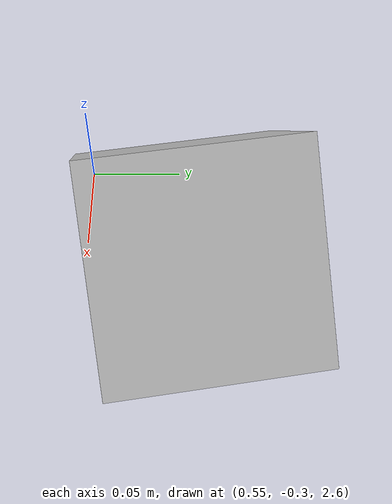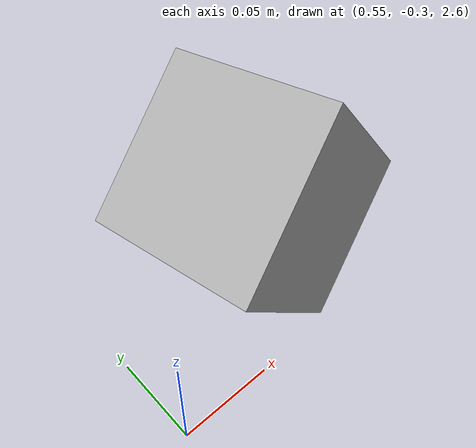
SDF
<?xml version="1.0" ?>
<sdf version="1.5">
    <model name="camera">
        <pose>0.71 -0.18 2.66 0 0.8 -2.98</pose>
        <static>true</static>
        <link name="link">
            <pose>0.05 0.05 0.05 0 0 0</pose>
            <inertial>
                <mass>0.1</mass>
                <inertia>
                    <ixx>0.000166667</ixx>
                    <iyy>0.000166667</iyy>
                    <izz>0.000166667</izz>
                </inertia>
            </inertial>
            <collision name="collision">
                <geometry>
                    <box>
                        <size>0.1 0.1 0.1</size>
                    </box>
                </geometry>
            </collision>
            <visual name="visual">
                <geometry>
                    <box>
                        <size>0.1 0.1 0.1</size>
                    </box>
                </geometry>
            </visual>
            <sensor name="camera" type="camera">
                <camera>
                    <horizontal_fov>1.047</horizontal_fov>
                    <image>
                        <width>1260</width>
                        <height>1080</height>
                    </image>
                    <clip>
                        <near>0.1</near>
                        <far>100</far>
                    </clip>
                </camera>
                <always_on>1</always_on>
                <update_rate>30</update_rate>
                <visualize>true</visualize>
                <topic>camera</topic>
            </sensor>
        </link>
    </model>
</sdf>
